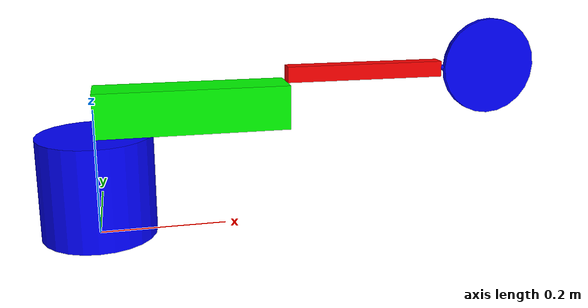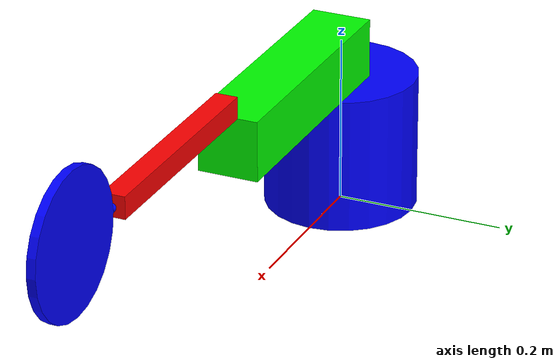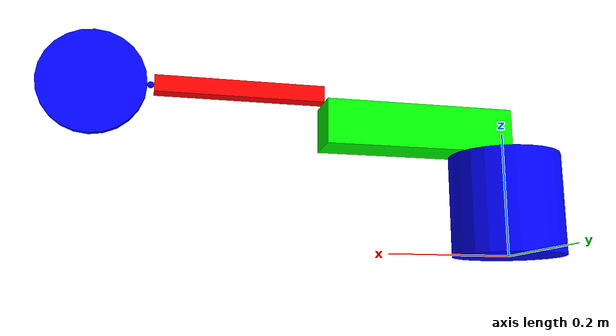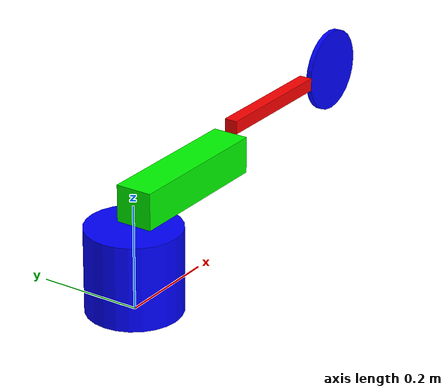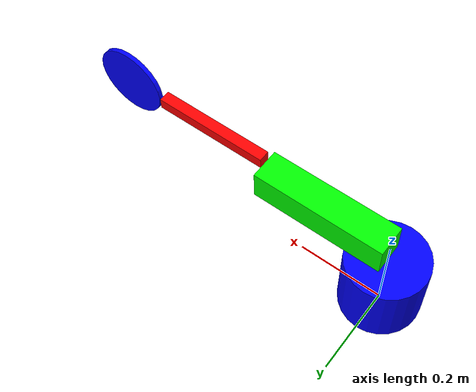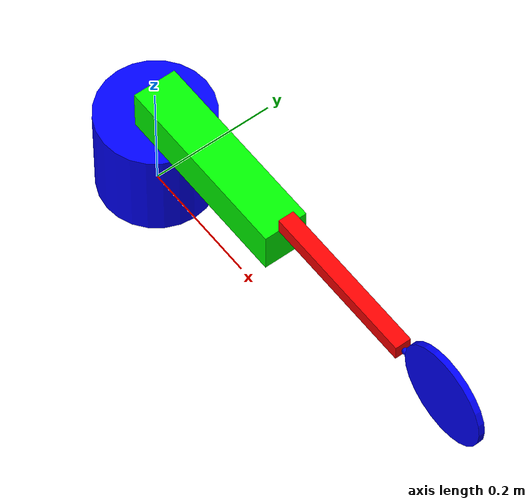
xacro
<?xml version="1.0"?>
<robot xmlns:xacro="http://www.ros.org/wiki/xacro" xmlns="http://drake.mit.edu">

    <xacro:include filename="inertial_macros.xacro"/>
    <xacro:include filename="visual_macros.xacro"/>

    <xacro:property name="shoulder_radius" value="${.18/2}" />
    <xacro:property name="shoulder_height" value=".1615" />

    <xacro:property name="upperarm_length" value=".30381" />
    <xacro:property name="upperarm_height" value="0.070471" />
    <xacro:property name="upperarm_mass" value=".982" />

    <xacro:property name="forearm_length" value=".259916" />
    <xacro:property name="forearm_height" value=".02545" />
    <xacro:property name="forearm_mass" value="0.6" />

    <!-- these are guesses and aren't part of actual robot measurements -->
    <xacro:property name="wrist_bone_radius" value="0.005" />
    <xacro:property name="wrist_bone_mass" value="0.01" />

    <xacro:property name="end_effector_length" value="0.01" />
    <xacro:property name="end_effector_radius" value="0.08" />
    <xacro:property name="end_effector_mass" value=".158" />

    <link name="odrive_base">
        <xacro:cylinder_identical_collision radius="${shoulder_radius}" height="${shoulder_height}">
            <material name="blue">
                <color rgba="0 0 1 1" />
            </material>
        </xacro:cylinder_identical_collision>
    </link>

    <joint name="shoulder" type="revolute">
        <parent link="odrive_base"/>
        <child link="upperarm"/>
        <origin xyz="0 0 ${shoulder_height}"/>
        <axis xyz="0 0 1" />
        <limit upper="${pi}" lower="-${pi}" effort=".1" velocity="20"/>
    </joint>

    <link name="upperarm">
        <xacro:square_prism_identical_collision length="${upperarm_length}" height="${upperarm_height}">
            <material name="green">
                <color rgba="0 1 0 1" />
            </material>
        </xacro:square_prism_identical_collision>
        <xacro:square_prism_inertial mass="${upperarm_mass}" length="${upperarm_length}" height="${upperarm_height}"/>
    </link>

    <joint name="elbow" type="revolute">
        <parent link="upperarm"/>
        <child link="forearm"/>
        <origin xyz="${upperarm_length} 0 ${upperarm_height}"/>
        <axis xyz="0 0 1" />
        <limit upper="${pi}" lower="-${pi}" effort=".1" velocity="20"/>
    </joint>

    <link name="forearm">
        <xacro:square_prism_identical_collision length="${forearm_length}" height="${forearm_height}">
            <material name="red">
                <color rgba="1 0 0 1" />
            </material>
        </xacro:square_prism_identical_collision>
        <xacro:square_prism_inertial mass="${forearm_mass}" length="${forearm_length}" height="${forearm_height}"/>
    </link>

    <joint name="wrist_orbit" type="revolute">
        <parent link="forearm"/>
        <child link="wrist_bone"/>
        <origin xyz="${forearm_length} 0 ${forearm_height/2}" rpy="0 0 0"/>
        <axis xyz="0 0 1" />
        <limit upper="${pi/2}" lower="-${pi/2}" effort=".1" velocity="20"/>
    </joint>

    <link name="wrist_bone">
        <xacro:sphere radius="${wrist_bone_radius}">
            <material name="blue">
                <color rgba="0 0 1 1" />
            </material>
        </xacro:sphere>
        <xacro:square_prism_inertial_2 mass="${wrist_bone_mass}" length="${end_effector_length}" height="${end_effector_radius}"/>
    </link>

    <joint name="wrist_spin" type="revolute">
        <parent link="wrist_bone"/>
        <child link="end_effector"/>
        <origin xyz="${wrist_bone_radius*2} 0 0" rpy="0 0 0"/>
        <axis xyz="1 0 0" />
        <limit upper="${4*pi}" lower="-${4*pi}" effort=".1" velocity="20"/>
    </joint>

    <link name="end_effector">
        <xacro:cylinder_identical_collision_2 radius="${end_effector_radius}" height="${end_effector_length}">
            <material name="blue">
                <color rgba="0 0 1 1" />
            </material>
        </xacro:cylinder_identical_collision_2>
        <xacro:square_prism_inertial_2 mass="${end_effector_mass}" length="${end_effector_length}" height="${end_effector_radius}"/>
    </link>

    <transmission type="SimpleTransmission" name="shoulder_torque">
        <actuator name="shoulder_input" />
        <joint name="shoulder" />
    </transmission>

    <transmission type="SimpleTransmission" name="elbow_torque">
        <actuator name="elbow_input" />
        <joint name="elbow" />
    </transmission>

    <transmission type="SimpleTransmission" name="wrist_torque">
        <actuator name="wrist_input" />
        <joint name="wrist" />
    </transmission>

</robot>

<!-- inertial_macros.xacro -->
<robot xmlns:xacro="http://www.ros.org/wiki/xacro" >

    <!-- https://en.wikipedia.org/wiki/List_of_moments_of_inertia -->
    <xacro:macro name="square_prism_inertial" params="mass length height">
        <inertial>
            <mass value="${mass}"/>
            <!-- In the Articulated Robot video, his xyz here is x, 0, z. Why? -->
            <origin xyz="${length/2} 0 ${height/2}" />
            <inertia
                ixx="${1/12 * mass * (2 * height*height)}"
                iyy="${1/12 * mass * (length*length + height*height)}"
                izz="${1/12 * mass * (length*length + height*height)}"
                ixy="0.0"
                ixz="0.0"
                iyz="0.0"
            />
        </inertial>
    </xacro:macro>

    <xacro:macro name="square_prism_inertial_2" params="mass length height">
        <inertial>
            <mass value="${mass}"/>
            <!-- In the Articulated Robot video, his xyz here is x, 0, z. Why? -->
            <origin xyz="0 ${height} 0" rpy="0 0 0"/>
            <inertia
                ixx="${1/12 * mass * (2 * height*height)}"
                iyy="${1/12 * mass * (length*length + height*height)}"
                izz="${1/12 * mass * (length*length + height*height)}"
                ixy="0.0"
                ixz="0.0"
                iyz="0.0"
            />
        </inertial>
    </xacro:macro>

</robot>

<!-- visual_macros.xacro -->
<robot xmlns:xacro="http://www.ros.org/wiki/xacro" >

    <xacro:macro name="square_prism_identical_collision" params="length height *material">
        <visual>
            <geometry>
                <box size="${length} ${height} ${height}"/>
            </geometry>
            <origin xyz="${length/2} 0 ${height/2}" />
            <xacro:insert_block name="material"/>
        </visual>
    </xacro:macro>

    <xacro:macro name="cylinder_identical_collision" params="radius height *material">
        <visual>
            <geometry>
                <cylinder length="${height}" radius="${radius}"/>
            </geometry>
            <xacro:insert_block name="material"/>
            <origin xyz="0 0 ${height/2}"/>
        </visual>
    </xacro:macro>

    <xacro:macro name="cylinder_identical_collision_2" params="radius height *material">
        <visual>
            <geometry>
                <cylinder length="${height}" radius="${radius}"/>
            </geometry>
            <xacro:insert_block name="material"/>
            <origin xyz="${radius} 0 0" rpy="${pi/2} 0 0"/>
        </visual>
    </xacro:macro>

    <xacro:macro name="sphere" params="radius *material">
        <visual>
            <geometry>
                <sphere radius="${radius}"/>
            </geometry>
            <xacro:insert_block name="material"/>
            <origin xyz="${radius} 0 0" rpy="0 0 0"/>
        </visual>
    </xacro:macro>

</robot>
